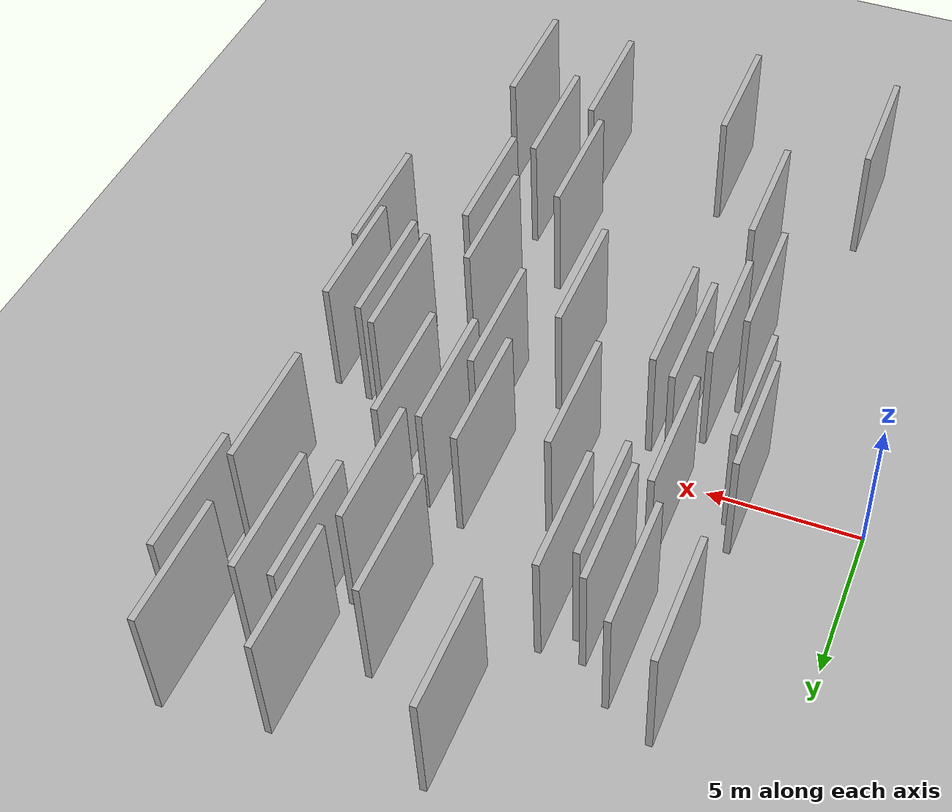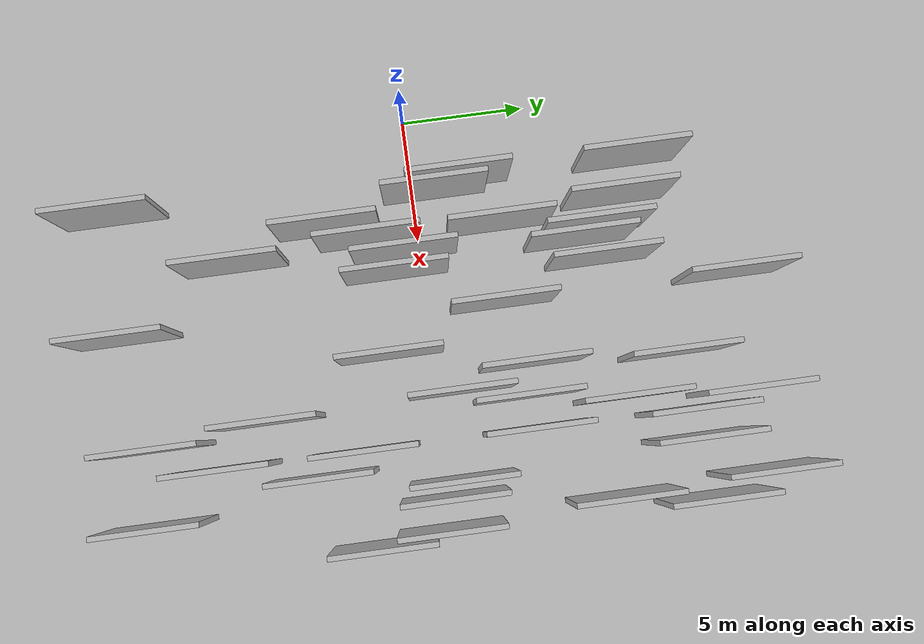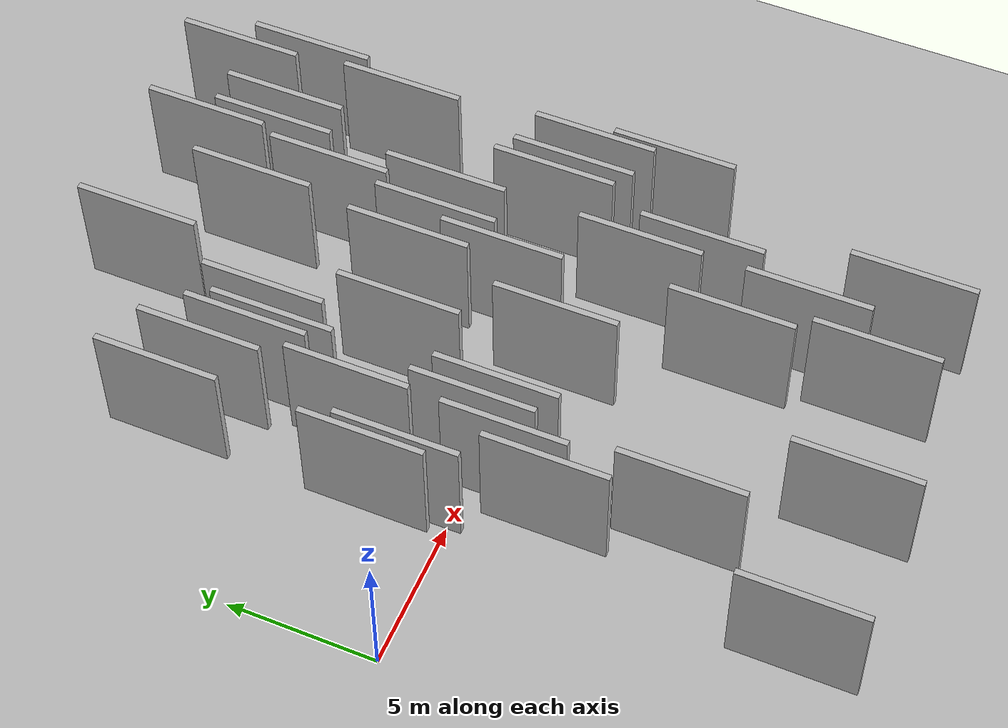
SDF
<?xml version="1.0" encoding="utf-8"?>

<sdf version="1.6">

   <world name="default">

      <gui fullscreen="0">

         <camera name="user_camera">

            <pose>-15 0 4.57585 0 0 0</pose>

            <view_controller>orbit</view_controller>

         </camera>

      </gui>

      <scene>

         <sky>

           <clouds>

             <speed>12</speed>

           </clouds>

         </sky>

         <ambient>0.4 0.4 0.4 1</ambient>

         <background>0.7 0.7 0.7 1</background>

         <shadows>1</shadows>

      </scene>

      <gravity>0 0 -9.8066</gravity>

      <magnetic_field>6e-06 2.3e-05 -4.2e-05</magnetic_field>

      <physics default="0" name="default_physics" type="ode">

         <ode>

            <solver>

               <type>quick</type>

               <iters>10</iters>

               <sor>1.0</sor>

               <use_dynamic_moi_rescaling>0</use_dynamic_moi_rescaling>

            </solver>

            <constraints>

               <cfm>0</cfm>

               <erp>0.2</erp>

               <contact_max_correcting_vel>100</contact_max_correcting_vel>

               <contact_surface_layer>0.001</contact_surface_layer>

            </constraints>

         </ode>

         <max_step_size>0.004</max_step_size>

         <real_time_factor>1</real_time_factor>

         <real_time_update_rate>250</real_time_update_rate>

      </physics>

      <light name="sun" type="directional">

         <cast_shadows>1</cast_shadows>

         <pose>0 0 10 0 0 0</pose>

         <diffuse>0.8 0.8 0.8 1</diffuse>

         <specular>0.2 0.2 0.2 1</specular>

         <attenuation>

            <range>1000</range>

            <constant>0.9</constant>

            <linear>0.01</linear>

            <quadratic>0.001</quadratic>

         </attenuation>

         <direction>-0.5 0.1 -0.9</direction>

      </light>

      <include>

         <name>ground_plane_1</name>

         <uri>model://HANNAS_ground_plane</uri>

         <pose>0 0 0  0 0 0</pose>

      </include>

      <include>

         <name>ground_plane_2</name>

         <uri>model://HANNAS_ground_plane</uri>

         <pose>100 0 0  0 0 0</pose>

      </include>

      <model name="HANNAS_wall_1">

         <static>1</static>

         <pose frame="">9.7592 -1.6104 2.5 0.000000 0.000000 1.570796</pose>

         <link name="link">

            <pose frame="">0 0 2.00 0 0 0</pose>

            <collision name="collision">

               <geometry>

                  <box>

                     <size>4.00 0.2 4.00</size>

                  </box>

               </geometry>

               <max_contacts>10</max_contacts>

               <surface>

                  <contact>

                     <ode/>

                  </contact>

                  <bounce/>

                  <friction>

                     <torsional>

                        <ode/>

                     </torsional>

                     <ode/>

                  </friction>

               </surface>

            </collision>

            <visual name="visual">

               <cast_shadows>0</cast_shadows>

               <geometry>

                  <box>

                     <size>4.00 0.2 4.00</size>

                  </box>

               </geometry>

               <material>

                  <script>

                     <uri>model://HANNAS_wall/materials/scripts</uri>

                     <uri>model://HANNAS_wall/materials/textures</uri>

                     <name>vrc/HANNAS_wall</name>

                  </script>

               </material>

            </visual>

            <self_collide>0</self_collide>

            <enable_wind>0</enable_wind>

            <kinematic>0</kinematic>

         </link>

      </model>

      <model name="HANNAS_wall_2">

         <static>1</static>

         <pose frame="">11.6773 -6.4739 2.5 0.000000 0.000000 1.570796</pose>

         <link name="link">

            <pose frame="">0 0 2.00 0 0 0</pose>

            <collision name="collision">

               <geometry>

                  <box>

                     <size>4.00 0.2 4.00</size>

                  </box>

               </geometry>

               <max_contacts>10</max_contacts>

               <surface>

                  <contact>

                     <ode/>

                  </contact>

                  <bounce/>

                  <friction>

                     <torsional>

                        <ode/>

                     </torsional>

                     <ode/>

                  </friction>

               </surface>

            </collision>

            <visual name="visual">

               <cast_shadows>0</cast_shadows>

               <geometry>

                  <box>

                     <size>4.00 0.2 4.00</size>

                  </box>

               </geometry>

               <material>

                  <script>

                     <uri>model://HANNAS_wall/materials/scripts</uri>

                     <uri>model://HANNAS_wall/materials/textures</uri>

                     <name>vrc/HANNAS_wall</name>

                  </script>

               </material>

            </visual>

            <self_collide>0</self_collide>

            <enable_wind>0</enable_wind>

            <kinematic>0</kinematic>

         </link>

      </model>

      <model name="HANNAS_wall_3">

         <static>1</static>

         <pose frame="">12.8077 11.5438 2.5 0.000000 0.000000 1.570796</pose>

         <link name="link">

            <pose frame="">0 0 2.00 0 0 0</pose>

            <collision name="collision">

               <geometry>

                  <box>

                     <size>4.00 0.2 4.00</size>

                  </box>

               </geometry>

               <max_contacts>10</max_contacts>

               <surface>

                  <contact>

                     <ode/>

                  </contact>

                  <bounce/>

                  <friction>

                     <torsional>

                        <ode/>

                     </torsional>

                     <ode/>

                  </friction>

               </surface>

            </collision>

            <visual name="visual">

               <cast_shadows>0</cast_shadows>

               <geometry>

                  <box>

                     <size>4.00 0.2 4.00</size>

                  </box>

               </geometry>

               <material>

                  <script>

                     <uri>model://HANNAS_wall/materials/scripts</uri>

                     <uri>model://HANNAS_wall/materials/textures</uri>

                     <name>vrc/HANNAS_wall</name>

                  </script>

               </material>

            </visual>

            <self_collide>0</self_collide>

            <enable_wind>0</enable_wind>

            <kinematic>0</kinematic>

         </link>

      </model>

      <model name="HANNAS_wall_4">

         <static>1</static>

         <pose frame="">5.2892 3.1388 2.5 0.000000 0.000000 1.570796</pose>

         <link name="link">

            <pose frame="">0 0 2.00 0 0 0</pose>

            <collision name="collision">

               <geometry>

                  <box>

                     <size>4.00 0.2 4.00</size>

                  </box>

               </geometry>

               <max_contacts>10</max_contacts>

               <surface>

                  <contact>

                     <ode/>

                  </contact>

                  <bounce/>

                  <friction>

                     <torsional>

                        <ode/>

                     </torsional>

                     <ode/>

                  </friction>

               </surface>

            </collision>

            <visual name="visual">

               <cast_shadows>0</cast_shadows>

               <geometry>

                  <box>

                     <size>4.00 0.2 4.00</size>

                  </box>

               </geometry>

               <material>

                  <script>

                     <uri>model://HANNAS_wall/materials/scripts</uri>

                     <uri>model://HANNAS_wall/materials/textures</uri>

                     <name>vrc/HANNAS_wall</name>

                  </script>

               </material>

            </visual>

            <self_collide>0</self_collide>

            <enable_wind>0</enable_wind>

            <kinematic>0</kinematic>

         </link>

      </model>

      <model name="HANNAS_wall_5">

         <static>1</static>

         <pose frame="">11.9851 3.2767 2.5 0.000000 0.000000 1.570796</pose>

         <link name="link">

            <pose frame="">0 0 2.00 0 0 0</pose>

            <collision name="collision">

               <geometry>

                  <box>

                     <size>4.00 0.2 4.00</size>

                  </box>

               </geometry>

               <max_contacts>10</max_contacts>

               <surface>

                  <contact>

                     <ode/>

                  </contact>

                  <bounce/>

                  <friction>

                     <torsional>

                        <ode/>

                     </torsional>

                     <ode/>

                  </friction>

               </surface>

            </collision>

            <visual name="visual">

               <cast_shadows>0</cast_shadows>

               <geometry>

                  <box>

                     <size>4.00 0.2 4.00</size>

                  </box>

               </geometry>

               <material>

                  <script>

                     <uri>model://HANNAS_wall/materials/scripts</uri>

                     <uri>model://HANNAS_wall/materials/textures</uri>

                     <name>vrc/HANNAS_wall</name>

                  </script>

               </material>

            </visual>

            <self_collide>0</self_collide>

            <enable_wind>0</enable_wind>

            <kinematic>0</kinematic>

         </link>

      </model>

      <model name="HANNAS_wall_6">

         <static>1</static>

         <pose frame="">16.8210 -2.7141 2.5 0.000000 0.000000 1.570796</pose>

         <link name="link">

            <pose frame="">0 0 2.00 0 0 0</pose>

            <collision name="collision">

               <geometry>

                  <box>

                     <size>4.00 0.2 4.00</size>

                  </box>

               </geometry>

               <max_contacts>10</max_contacts>

               <surface>

                  <contact>

                     <ode/>

                  </contact>

                  <bounce/>

                  <friction>

                     <torsional>

                        <ode/>

                     </torsional>

                     <ode/>

                  </friction>

               </surface>

            </collision>

            <visual name="visual">

               <cast_shadows>0</cast_shadows>

               <geometry>

                  <box>

                     <size>4.00 0.2 4.00</size>

                  </box>

               </geometry>

               <material>

                  <script>

                     <uri>model://HANNAS_wall/materials/scripts</uri>

                     <uri>model://HANNAS_wall/materials/textures</uri>

                     <name>vrc/HANNAS_wall</name>

                  </script>

               </material>

            </visual>

            <self_collide>0</self_collide>

            <enable_wind>0</enable_wind>

            <kinematic>0</kinematic>

         </link>

      </model>

      <model name="HANNAS_wall_7">

         <static>1</static>

         <pose frame="">6.6641 -1.0126 2.5 0.000000 0.000000 1.570796</pose>

         <link name="link">

            <pose frame="">0 0 2.00 0 0 0</pose>

            <collision name="collision">

               <geometry>

                  <box>

                     <size>4.00 0.2 4.00</size>

                  </box>

               </geometry>

               <max_contacts>10</max_contacts>

               <surface>

                  <contact>

                     <ode/>

                  </contact>

                  <bounce/>

                  <friction>

                     <torsional>

                        <ode/>

                     </torsional>

                     <ode/>

                  </friction>

               </surface>

            </collision>

            <visual name="visual">

               <cast_shadows>0</cast_shadows>

               <geometry>

                  <box>

                     <size>4.00 0.2 4.00</size>

                  </box>

               </geometry>

               <material>

                  <script>

                     <uri>model://HANNAS_wall/materials/scripts</uri>

                     <uri>model://HANNAS_wall/materials/textures</uri>

                     <name>vrc/HANNAS_wall</name>

                  </script>

               </material>

            </visual>

            <self_collide>0</self_collide>

            <enable_wind>0</enable_wind>

            <kinematic>0</kinematic>

         </link>

      </model>

      <model name="HANNAS_wall_8">

         <static>1</static>

         <pose frame="">4.6012 -3.4055 2.5 0.000000 0.000000 1.570796</pose>

         <link name="link">

            <pose frame="">0 0 2.00 0 0 0</pose>

            <collision name="collision">

               <geometry>

                  <box>

                     <size>4.00 0.2 4.00</size>

                  </box>

               </geometry>

               <max_contacts>10</max_contacts>

               <surface>

                  <contact>

                     <ode/>

                  </contact>

                  <bounce/>

                  <friction>

                     <torsional>

                        <ode/>

                     </torsional>

                     <ode/>

                  </friction>

               </surface>

            </collision>

            <visual name="visual">

               <cast_shadows>0</cast_shadows>

               <geometry>

                  <box>

                     <size>4.00 0.2 4.00</size>

                  </box>

               </geometry>

               <material>

                  <script>

                     <uri>model://HANNAS_wall/materials/scripts</uri>

                     <uri>model://HANNAS_wall/materials/textures</uri>

                     <name>vrc/HANNAS_wall</name>

                  </script>

               </material>

            </visual>

            <self_collide>0</self_collide>

            <enable_wind>0</enable_wind>

            <kinematic>0</kinematic>

         </link>

      </model>

      <model name="HANNAS_wall_9">

         <static>1</static>

         <pose frame="">13.9949 -4.6772 2.5 0.000000 0.000000 1.570796</pose>

         <link name="link">

            <pose frame="">0 0 2.00 0 0 0</pose>

            <collision name="collision">

               <geometry>

                  <box>

                     <size>4.00 0.2 4.00</size>

                  </box>

               </geometry>

               <max_contacts>10</max_contacts>

               <surface>

                  <contact>

                     <ode/>

                  </contact>

                  <bounce/>

                  <friction>

                     <torsional>

                        <ode/>

                     </torsional>

                     <ode/>

                  </friction>

               </surface>

            </collision>

            <visual name="visual">

               <cast_shadows>0</cast_shadows>

               <geometry>

                  <box>

                     <size>4.00 0.2 4.00</size>

                  </box>

               </geometry>

               <material>

                  <script>

                     <uri>model://HANNAS_wall/materials/scripts</uri>

                     <uri>model://HANNAS_wall/materials/textures</uri>

                     <name>vrc/HANNAS_wall</name>

                  </script>

               </material>

            </visual>

            <self_collide>0</self_collide>

            <enable_wind>0</enable_wind>

            <kinematic>0</kinematic>

         </link>

      </model>

      <model name="HANNAS_wall_10">

         <static>1</static>

         <pose frame="">13.2294 3.4819 2.5 0.000000 0.000000 1.570796</pose>

         <link name="link">

            <pose frame="">0 0 2.00 0 0 0</pose>

            <collision name="collision">

               <geometry>

                  <box>

                     <size>4.00 0.2 4.00</size>

                  </box>

               </geometry>

               <max_contacts>10</max_contacts>

               <surface>

                  <contact>

                     <ode/>

                  </contact>

                  <bounce/>

                  <friction>

                     <torsional>

                        <ode/>

                     </torsional>

                     <ode/>

                  </friction>

               </surface>

            </collision>

            <visual name="visual">

               <cast_shadows>0</cast_shadows>

               <geometry>

                  <box>

                     <size>4.00 0.2 4.00</size>

                  </box>

               </geometry>

               <material>

                  <script>

                     <uri>model://HANNAS_wall/materials/scripts</uri>

                     <uri>model://HANNAS_wall/materials/textures</uri>

                     <name>vrc/HANNAS_wall</name>

                  </script>

               </material>

            </visual>

            <self_collide>0</self_collide>

            <enable_wind>0</enable_wind>

            <kinematic>0</kinematic>

         </link>

      </model>

      <model name="HANNAS_wall_11">

         <static>1</static>

         <pose frame="">14.7511 0.4946 2.5 0.000000 0.000000 1.570796</pose>

         <link name="link">

            <pose frame="">0 0 2.00 0 0 0</pose>

            <collision name="collision">

               <geometry>

                  <box>

                     <size>4.00 0.2 4.00</size>

                  </box>

               </geometry>

               <max_contacts>10</max_contacts>

               <surface>

                  <contact>

                     <ode/>

                  </contact>

                  <bounce/>

                  <friction>

                     <torsional>

                        <ode/>

                     </torsional>

                     <ode/>

                  </friction>

               </surface>

            </collision>

            <visual name="visual">

               <cast_shadows>0</cast_shadows>

               <geometry>

                  <box>

                     <size>4.00 0.2 4.00</size>

                  </box>

               </geometry>

               <material>

                  <script>

                     <uri>model://HANNAS_wall/materials/scripts</uri>

                     <uri>model://HANNAS_wall/materials/textures</uri>

                     <name>vrc/HANNAS_wall</name>

                  </script>

               </material>

            </visual>

            <self_collide>0</self_collide>

            <enable_wind>0</enable_wind>

            <kinematic>0</kinematic>

         </link>

      </model>

      <model name="HANNAS_wall_12">

         <static>1</static>

         <pose frame="">8.3397 2.8619 2.5 0.000000 0.000000 1.570796</pose>

         <link name="link">

            <pose frame="">0 0 2.00 0 0 0</pose>

            <collision name="collision">

               <geometry>

                  <box>

                     <size>4.00 0.2 4.00</size>

                  </box>

               </geometry>

               <max_contacts>10</max_contacts>

               <surface>

                  <contact>

                     <ode/>

                  </contact>

                  <bounce/>

                  <friction>

                     <torsional>

                        <ode/>

                     </torsional>

                     <ode/>

                  </friction>

               </surface>

            </collision>

            <visual name="visual">

               <cast_shadows>0</cast_shadows>

               <geometry>

                  <box>

                     <size>4.00 0.2 4.00</size>

                  </box>

               </geometry>

               <material>

                  <script>

                     <uri>model://HANNAS_wall/materials/scripts</uri>

                     <uri>model://HANNAS_wall/materials/textures</uri>

                     <name>vrc/HANNAS_wall</name>

                  </script>

               </material>

            </visual>

            <self_collide>0</self_collide>

            <enable_wind>0</enable_wind>

            <kinematic>0</kinematic>

         </link>

      </model>

      <model name="HANNAS_wall_13">

         <static>1</static>

         <pose frame="">11.4666 0.8533 2.5 0.000000 0.000000 1.570796</pose>

         <link name="link">

            <pose frame="">0 0 2.00 0 0 0</pose>

            <collision name="collision">

               <geometry>

                  <box>

                     <size>4.00 0.2 4.00</size>

                  </box>

               </geometry>

               <max_contacts>10</max_contacts>

               <surface>

                  <contact>

                     <ode/>

                  </contact>

                  <bounce/>

                  <friction>

                     <torsional>

                        <ode/>

                     </torsional>

                     <ode/>

                  </friction>

               </surface>

            </collision>

            <visual name="visual">

               <cast_shadows>0</cast_shadows>

               <geometry>

                  <box>

                     <size>4.00 0.2 4.00</size>

                  </box>

               </geometry>

               <material>

                  <script>

                     <uri>model://HANNAS_wall/materials/scripts</uri>

                     <uri>model://HANNAS_wall/materials/textures</uri>

                     <name>vrc/HANNAS_wall</name>

                  </script>

               </material>

            </visual>

            <self_collide>0</self_collide>

            <enable_wind>0</enable_wind>

            <kinematic>0</kinematic>

         </link>

      </model>

      <model name="HANNAS_wall_14">

         <static>1</static>

         <pose frame="">13.2216 -2.9685 2.5 0.000000 0.000000 1.570796</pose>

         <link name="link">

            <pose frame="">0 0 2.00 0 0 0</pose>

            <collision name="collision">

               <geometry>

                  <box>

                     <size>4.00 0.2 4.00</size>

                  </box>

               </geometry>

               <max_contacts>10</max_contacts>

               <surface>

                  <contact>

                     <ode/>

                  </contact>

                  <bounce/>

                  <friction>

                     <torsional>

                        <ode/>

                     </torsional>

                     <ode/>

                  </friction>

               </surface>

            </collision>

            <visual name="visual">

               <cast_shadows>0</cast_shadows>

               <geometry>

                  <box>

                     <size>4.00 0.2 4.00</size>

                  </box>

               </geometry>

               <material>

                  <script>

                     <uri>model://HANNAS_wall/materials/scripts</uri>

                     <uri>model://HANNAS_wall/materials/textures</uri>

                     <name>vrc/HANNAS_wall</name>

                  </script>

               </material>

            </visual>

            <self_collide>0</self_collide>

            <enable_wind>0</enable_wind>

            <kinematic>0</kinematic>

         </link>

      </model>

      <model name="HANNAS_wall_15">

         <static>1</static>

         <pose frame="">14.3509 9.5449 2.5 0.000000 0.000000 1.570796</pose>

         <link name="link">

            <pose frame="">0 0 2.00 0 0 0</pose>

            <collision name="collision">

               <geometry>

                  <box>

                     <size>4.00 0.2 4.00</size>

                  </box>

               </geometry>

               <max_contacts>10</max_contacts>

               <surface>

                  <contact>

                     <ode/>

                  </contact>

                  <bounce/>

                  <friction>

                     <torsional>

                        <ode/>

                     </torsional>

                     <ode/>

                  </friction>

               </surface>

            </collision>

            <visual name="visual">

               <cast_shadows>0</cast_shadows>

               <geometry>

                  <box>

                     <size>4.00 0.2 4.00</size>

                  </box>

               </geometry>

               <material>

                  <script>

                     <uri>model://HANNAS_wall/materials/scripts</uri>

                     <uri>model://HANNAS_wall/materials/textures</uri>

                     <name>vrc/HANNAS_wall</name>

                  </script>

               </material>

            </visual>

            <self_collide>0</self_collide>

            <enable_wind>0</enable_wind>

            <kinematic>0</kinematic>

         </link>

      </model>

      <model name="HANNAS_wall_16">

         <static>1</static>

         <pose frame="">7.8540 -11.6183 2.5 0.000000 0.000000 1.570796</pose>

         <link name="link">

            <pose frame="">0 0 2.00 0 0 0</pose>

            <collision name="collision">

               <geometry>

                  <box>

                     <size>4.00 0.2 4.00</size>

                  </box>

               </geometry>

               <max_contacts>10</max_contacts>

               <surface>

                  <contact>

                     <ode/>

                  </contact>

                  <bounce/>

                  <friction>

                     <torsional>

                        <ode/>

                     </torsional>

                     <ode/>

                  </friction>

               </surface>

            </collision>

            <visual name="visual">

               <cast_shadows>0</cast_shadows>

               <geometry>

                  <box>

                     <size>4.00 0.2 4.00</size>

                  </box>

               </geometry>

               <material>

                  <script>

                     <uri>model://HANNAS_wall/materials/scripts</uri>

                     <uri>model://HANNAS_wall/materials/textures</uri>

                     <name>vrc/HANNAS_wall</name>

                  </script>

               </material>

            </visual>

            <self_collide>0</self_collide>

            <enable_wind>0</enable_wind>

            <kinematic>0</kinematic>

         </link>

      </model>

      <model name="HANNAS_wall_17">

         <static>1</static>

         <pose frame="">3.4030 8.3914 2.5 0.000000 0.000000 1.570796</pose>

         <link name="link">

            <pose frame="">0 0 2.00 0 0 0</pose>

            <collision name="collision">

               <geometry>

                  <box>

                     <size>4.00 0.2 4.00</size>

                  </box>

               </geometry>

               <max_contacts>10</max_contacts>

               <surface>

                  <contact>

                     <ode/>

                  </contact>

                  <bounce/>

                  <friction>

                     <torsional>

                        <ode/>

                     </torsional>

                     <ode/>

                  </friction>

               </surface>

            </collision>

            <visual name="visual">

               <cast_shadows>0</cast_shadows>

               <geometry>

                  <box>

                     <size>4.00 0.2 4.00</size>

                  </box>

               </geometry>

               <material>

                  <script>

                     <uri>model://HANNAS_wall/materials/scripts</uri>

                     <uri>model://HANNAS_wall/materials/textures</uri>

                     <name>vrc/HANNAS_wall</name>

                  </script>

               </material>

            </visual>

            <self_collide>0</self_collide>

            <enable_wind>0</enable_wind>

            <kinematic>0</kinematic>

         </link>

      </model>

      <model name="HANNAS_wall_18">

         <static>1</static>

         <pose frame="">16.1538 6.3049 2.5 0.000000 0.000000 1.570796</pose>

         <link name="link">

            <pose frame="">0 0 2.00 0 0 0</pose>

            <collision name="collision">

               <geometry>

                  <box>

                     <size>4.00 0.2 4.00</size>

                  </box>

               </geometry>

               <max_contacts>10</max_contacts>

               <surface>

                  <contact>

                     <ode/>

                  </contact>

                  <bounce/>

                  <friction>

                     <torsional>

                        <ode/>

                     </torsional>

                     <ode/>

                  </friction>

               </surface>

            </collision>

            <visual name="visual">

               <cast_shadows>0</cast_shadows>

               <geometry>

                  <box>

                     <size>4.00 0.2 4.00</size>

                  </box>

               </geometry>

               <material>

                  <script>

                     <uri>model://HANNAS_wall/materials/scripts</uri>

                     <uri>model://HANNAS_wall/materials/textures</uri>

                     <name>vrc/HANNAS_wall</name>

                  </script>

               </material>

            </visual>

            <self_collide>0</self_collide>

            <enable_wind>0</enable_wind>

            <kinematic>0</kinematic>

         </link>

      </model>

      <model name="HANNAS_wall_19">

         <static>1</static>

         <pose frame="">16.5212 -0.1748 2.5 0.000000 0.000000 1.570796</pose>

         <link name="link">

            <pose frame="">0 0 2.00 0 0 0</pose>

            <collision name="collision">

               <geometry>

                  <box>

                     <size>4.00 0.2 4.00</size>

                  </box>

               </geometry>

               <max_contacts>10</max_contacts>

               <surface>

                  <contact>

                     <ode/>

                  </contact>

                  <bounce/>

                  <friction>

                     <torsional>

                        <ode/>

                     </torsional>

                     <ode/>

                  </friction>

               </surface>

            </collision>

            <visual name="visual">

               <cast_shadows>0</cast_shadows>

               <geometry>

                  <box>

                     <size>4.00 0.2 4.00</size>

                  </box>

               </geometry>

               <material>

                  <script>

                     <uri>model://HANNAS_wall/materials/scripts</uri>

                     <uri>model://HANNAS_wall/materials/textures</uri>

                     <name>vrc/HANNAS_wall</name>

                  </script>

               </material>

            </visual>

            <self_collide>0</self_collide>

            <enable_wind>0</enable_wind>

            <kinematic>0</kinematic>

         </link>

      </model>

      <model name="HANNAS_wall_20">

         <static>1</static>

         <pose frame="">10.7692 3.6537 2.5 0.000000 0.000000 1.570796</pose>

         <link name="link">

            <pose frame="">0 0 2.00 0 0 0</pose>

            <collision name="collision">

               <geometry>

                  <box>

                     <size>4.00 0.2 4.00</size>

                  </box>

               </geometry>

               <max_contacts>10</max_contacts>

               <surface>

                  <contact>

                     <ode/>

                  </contact>

                  <bounce/>

                  <friction>

                     <torsional>

                        <ode/>

                     </torsional>

                     <ode/>

                  </friction>

               </surface>

            </collision>

            <visual name="visual">

               <cast_shadows>0</cast_shadows>

               <geometry>

                  <box>

                     <size>4.00 0.2 4.00</size>

                  </box>

               </geometry>

               <material>

                  <script>

                     <uri>model://HANNAS_wall/materials/scripts</uri>

                     <uri>model://HANNAS_wall/materials/textures</uri>

                     <name>vrc/HANNAS_wall</name>

                  </script>

               </material>

            </visual>

            <self_collide>0</self_collide>

            <enable_wind>0</enable_wind>

            <kinematic>0</kinematic>

         </link>

      </model>

      <model name="HANNAS_wall_21">

         <static>1</static>

         <pose frame="">16.6238 9.6895 2.5 0.000000 0.000000 1.570796</pose>

         <link name="link">

            <pose frame="">0 0 2.00 0 0 0</pose>

            <collision name="collision">

               <geometry>

                  <box>

                     <size>4.00 0.2 4.00</size>

                  </box>

               </geometry>

               <max_contacts>10</max_contacts>

               <surface>

                  <contact>

                     <ode/>

                  </contact>

                  <bounce/>

                  <friction>

                     <torsional>

                        <ode/>

                     </torsional>

                     <ode/>

                  </friction>

               </surface>

            </collision>

            <visual name="visual">

               <cast_shadows>0</cast_shadows>

               <geometry>

                  <box>

                     <size>4.00 0.2 4.00</size>

                  </box>

               </geometry>

               <material>

                  <script>

                     <uri>model://HANNAS_wall/materials/scripts</uri>

                     <uri>model://HANNAS_wall/materials/textures</uri>

                     <name>vrc/HANNAS_wall</name>

                  </script>

               </material>

            </visual>

            <self_collide>0</self_collide>

            <enable_wind>0</enable_wind>

            <kinematic>0</kinematic>

         </link>

      </model>

      <model name="HANNAS_wall_22">

         <static>1</static>

         <pose frame="">3.3506 1.7838 2.5 0.000000 0.000000 1.570796</pose>

         <link name="link">

            <pose frame="">0 0 2.00 0 0 0</pose>

            <collision name="collision">

               <geometry>

                  <box>

                     <size>4.00 0.2 4.00</size>

                  </box>

               </geometry>

               <max_contacts>10</max_contacts>

               <surface>

                  <contact>

                     <ode/>

                  </contact>

                  <bounce/>

                  <friction>

                     <torsional>

                        <ode/>

                     </torsional>

                     <ode/>

                  </friction>

               </surface>

            </collision>

            <visual name="visual">

               <cast_shadows>0</cast_shadows>

               <geometry>

                  <box>

                     <size>4.00 0.2 4.00</size>

                  </box>

               </geometry>

               <material>

                  <script>

                     <uri>model://HANNAS_wall/materials/scripts</uri>

                     <uri>model://HANNAS_wall/materials/textures</uri>

                     <name>vrc/HANNAS_wall</name>

                  </script>

               </material>

            </visual>

            <self_collide>0</self_collide>

            <enable_wind>0</enable_wind>

            <kinematic>0</kinematic>

         </link>

      </model>

      <model name="HANNAS_wall_23">

         <static>1</static>

         <pose frame="">13.2113 -8.3599 2.5 0.000000 0.000000 1.570796</pose>

         <link name="link">

            <pose frame="">0 0 2.00 0 0 0</pose>

            <collision name="collision">

               <geometry>

                  <box>

                     <size>4.00 0.2 4.00</size>

                  </box>

               </geometry>

               <max_contacts>10</max_contacts>

               <surface>

                  <contact>

                     <ode/>

                  </contact>

                  <bounce/>

                  <friction>

                     <torsional>

                        <ode/>

                     </torsional>

                     <ode/>

                  </friction>

               </surface>

            </collision>

            <visual name="visual">

               <cast_shadows>0</cast_shadows>

               <geometry>

                  <box>

                     <size>4.00 0.2 4.00</size>

                  </box>

               </geometry>

               <material>

                  <script>

                     <uri>model://HANNAS_wall/materials/scripts</uri>

                     <uri>model://HANNAS_wall/materials/textures</uri>

                     <name>vrc/HANNAS_wall</name>

                  </script>

               </material>

            </visual>

            <self_collide>0</self_collide>

            <enable_wind>0</enable_wind>

            <kinematic>0</kinematic>

         </link>

      </model>

      <model name="HANNAS_wall_24">

         <static>1</static>

         <pose frame="">3.6928 0.8385 2.5 0.000000 0.000000 1.570796</pose>

         <link name="link">

            <pose frame="">0 0 2.00 0 0 0</pose>

            <collision name="collision">

               <geometry>

                  <box>

                     <size>4.00 0.2 4.00</size>

                  </box>

               </geometry>

               <max_contacts>10</max_contacts>

               <surface>

                  <contact>

                     <ode/>

                  </contact>

                  <bounce/>

                  <friction>

                     <torsional>

                        <ode/>

                     </torsional>

                     <ode/>

                  </friction>

               </surface>

            </collision>

            <visual name="visual">

               <cast_shadows>0</cast_shadows>

               <geometry>

                  <box>

                     <size>4.00 0.2 4.00</size>

                  </box>

               </geometry>

               <material>

                  <script>

                     <uri>model://HANNAS_wall/materials/scripts</uri>

                     <uri>model://HANNAS_wall/materials/textures</uri>

                     <name>vrc/HANNAS_wall</name>

                  </script>

               </material>

            </visual>

            <self_collide>0</self_collide>

            <enable_wind>0</enable_wind>

            <kinematic>0</kinematic>

         </link>

      </model>

      <model name="HANNAS_wall_25">

         <static>1</static>

         <pose frame="">5.9447 -0.5762 2.5 0.000000 0.000000 1.570796</pose>

         <link name="link">

            <pose frame="">0 0 2.00 0 0 0</pose>

            <collision name="collision">

               <geometry>

                  <box>

                     <size>4.00 0.2 4.00</size>

                  </box>

               </geometry>

               <max_contacts>10</max_contacts>

               <surface>

                  <contact>

                     <ode/>

                  </contact>

                  <bounce/>

                  <friction>

                     <torsional>

                        <ode/>

                     </torsional>

                     <ode/>

                  </friction>

               </surface>

            </collision>

            <visual name="visual">

               <cast_shadows>0</cast_shadows>

               <geometry>

                  <box>

                     <size>4.00 0.2 4.00</size>

                  </box>

               </geometry>

               <material>

                  <script>

                     <uri>model://HANNAS_wall/materials/scripts</uri>

                     <uri>model://HANNAS_wall/materials/textures</uri>

                     <name>vrc/HANNAS_wall</name>

                  </script>

               </material>

            </visual>

            <self_collide>0</self_collide>

            <enable_wind>0</enable_wind>

            <kinematic>0</kinematic>

         </link>

      </model>

      <model name="HANNAS_wall_26">

         <static>1</static>

         <pose frame="">12.1567 -10.8247 2.5 0.000000 0.000000 1.570796</pose>

         <link name="link">

            <pose frame="">0 0 2.00 0 0 0</pose>

            <collision name="collision">

               <geometry>

                  <box>

                     <size>4.00 0.2 4.00</size>

                  </box>

               </geometry>

               <max_contacts>10</max_contacts>

               <surface>

                  <contact>

                     <ode/>

                  </contact>

                  <bounce/>

                  <friction>

                     <torsional>

                        <ode/>

                     </torsional>

                     <ode/>

                  </friction>

               </surface>

            </collision>

            <visual name="visual">

               <cast_shadows>0</cast_shadows>

               <geometry>

                  <box>

                     <size>4.00 0.2 4.00</size>

                  </box>

               </geometry>

               <material>

                  <script>

                     <uri>model://HANNAS_wall/materials/scripts</uri>

                     <uri>model://HANNAS_wall/materials/textures</uri>

                     <name>vrc/HANNAS_wall</name>

                  </script>

               </material>

            </visual>

            <self_collide>0</self_collide>

            <enable_wind>0</enable_wind>

            <kinematic>0</kinematic>

         </link>

      </model>

      <model name="HANNAS_wall_27">

         <static>1</static>

         <pose frame="">15.0164 -11.0518 2.5 0.000000 0.000000 1.570796</pose>

         <link name="link">

            <pose frame="">0 0 2.00 0 0 0</pose>

            <collision name="collision">

               <geometry>

                  <box>

                     <size>4.00 0.2 4.00</size>

                  </box>

               </geometry>

               <max_contacts>10</max_contacts>

               <surface>

                  <contact>

                     <ode/>

                  </contact>

                  <bounce/>

                  <friction>

                     <torsional>

                        <ode/>

                     </torsional>

                     <ode/>

                  </friction>

               </surface>

            </collision>

            <visual name="visual">

               <cast_shadows>0</cast_shadows>

               <geometry>

                  <box>

                     <size>4.00 0.2 4.00</size>

                  </box>

               </geometry>

               <material>

                  <script>

                     <uri>model://HANNAS_wall/materials/scripts</uri>

                     <uri>model://HANNAS_wall/materials/textures</uri>

                     <name>vrc/HANNAS_wall</name>

                  </script>

               </material>

            </visual>

            <self_collide>0</self_collide>

            <enable_wind>0</enable_wind>

            <kinematic>0</kinematic>

         </link>

      </model>

      <model name="HANNAS_wall_28">

         <static>1</static>

         <pose frame="">11.0796 9.0973 2.5 0.000000 0.000000 1.570796</pose>

         <link name="link">

            <pose frame="">0 0 2.00 0 0 0</pose>

            <collision name="collision">

               <geometry>

                  <box>

                     <size>4.00 0.2 4.00</size>

                  </box>

               </geometry>

               <max_contacts>10</max_contacts>

               <surface>

                  <contact>

                     <ode/>

                  </contact>

                  <bounce/>

                  <friction>

                     <torsional>

                        <ode/>

                     </torsional>

                     <ode/>

                  </friction>

               </surface>

            </collision>

            <visual name="visual">

               <cast_shadows>0</cast_shadows>

               <geometry>

                  <box>

                     <size>4.00 0.2 4.00</size>

                  </box>

               </geometry>

               <material>

                  <script>

                     <uri>model://HANNAS_wall/materials/scripts</uri>

                     <uri>model://HANNAS_wall/materials/textures</uri>

                     <name>vrc/HANNAS_wall</name>

                  </script>

               </material>

            </visual>

            <self_collide>0</self_collide>

            <enable_wind>0</enable_wind>

            <kinematic>0</kinematic>

         </link>

      </model>

      <model name="HANNAS_wall_29">

         <static>1</static>

         <pose frame="">5.5809 -7.1650 2.5 0.000000 0.000000 1.570796</pose>

         <link name="link">

            <pose frame="">0 0 2.00 0 0 0</pose>

            <collision name="collision">

               <geometry>

                  <box>

                     <size>4.00 0.2 4.00</size>

                  </box>

               </geometry>

               <max_contacts>10</max_contacts>

               <surface>

                  <contact>

                     <ode/>

                  </contact>

                  <bounce/>

                  <friction>

                     <torsional>

                        <ode/>

                     </torsional>

                     <ode/>

                  </friction>

               </surface>

            </collision>

            <visual name="visual">

               <cast_shadows>0</cast_shadows>

               <geometry>

                  <box>

                     <size>4.00 0.2 4.00</size>

                  </box>

               </geometry>

               <material>

                  <script>

                     <uri>model://HANNAS_wall/materials/scripts</uri>

                     <uri>model://HANNAS_wall/materials/textures</uri>

                     <name>vrc/HANNAS_wall</name>

                  </script>

               </material>

            </visual>

            <self_collide>0</self_collide>

            <enable_wind>0</enable_wind>

            <kinematic>0</kinematic>

         </link>

      </model>

      <model name="HANNAS_wall_30">

         <static>1</static>

         <pose frame="">4.8474 7.7330 2.5 0.000000 0.000000 1.570796</pose>

         <link name="link">

            <pose frame="">0 0 2.00 0 0 0</pose>

            <collision name="collision">

               <geometry>

                  <box>

                     <size>4.00 0.2 4.00</size>

                  </box>

               </geometry>

               <max_contacts>10</max_contacts>

               <surface>

                  <contact>

                     <ode/>

                  </contact>

                  <bounce/>

                  <friction>

                     <torsional>

                        <ode/>

                     </torsional>

                     <ode/>

                  </friction>

               </surface>

            </collision>

            <visual name="visual">

               <cast_shadows>0</cast_shadows>

               <geometry>

                  <box>

                     <size>4.00 0.2 4.00</size>

                  </box>

               </geometry>

               <material>

                  <script>

                     <uri>model://HANNAS_wall/materials/scripts</uri>

                     <uri>model://HANNAS_wall/materials/textures</uri>

                     <name>vrc/HANNAS_wall</name>

                  </script>

               </material>

            </visual>

            <self_collide>0</self_collide>

            <enable_wind>0</enable_wind>

            <kinematic>0</kinematic>

         </link>

      </model>

      <model name="HANNAS_wall_31">

         <static>1</static>

         <pose frame="">13.2948 9.4437 2.5 0.000000 0.000000 1.570796</pose>

         <link name="link">

            <pose frame="">0 0 2.00 0 0 0</pose>

            <collision name="collision">

               <geometry>

                  <box>

                     <size>4.00 0.2 4.00</size>

                  </box>

               </geometry>

               <max_contacts>10</max_contacts>

               <surface>

                  <contact>

                     <ode/>

                  </contact>

                  <bounce/>

                  <friction>

                     <torsional>

                        <ode/>

                     </torsional>

                     <ode/>

                  </friction>

               </surface>

            </collision>

            <visual name="visual">

               <cast_shadows>0</cast_shadows>

               <geometry>

                  <box>

                     <size>4.00 0.2 4.00</size>

                  </box>

               </geometry>

               <material>

                  <script>

                     <uri>model://HANNAS_wall/materials/scripts</uri>

                     <uri>model://HANNAS_wall/materials/textures</uri>

                     <name>vrc/HANNAS_wall</name>

                  </script>

               </material>

            </visual>

            <self_collide>0</self_collide>

            <enable_wind>0</enable_wind>

            <kinematic>0</kinematic>

         </link>

      </model>

      <model name="HANNAS_wall_32">

         <static>1</static>

         <pose frame="">5.2356 -1.8650 2.5 0.000000 0.000000 1.570796</pose>

         <link name="link">

            <pose frame="">0 0 2.00 0 0 0</pose>

            <collision name="collision">

               <geometry>

                  <box>

                     <size>4.00 0.2 4.00</size>

                  </box>

               </geometry>

               <max_contacts>10</max_contacts>

               <surface>

                  <contact>

                     <ode/>

                  </contact>

                  <bounce/>

                  <friction>

                     <torsional>

                        <ode/>

                     </torsional>

                     <ode/>

                  </friction>

               </surface>

            </collision>

            <visual name="visual">

               <cast_shadows>0</cast_shadows>

               <geometry>

                  <box>

                     <size>4.00 0.2 4.00</size>

                  </box>

               </geometry>

               <material>

                  <script>

                     <uri>model://HANNAS_wall/materials/scripts</uri>

                     <uri>model://HANNAS_wall/materials/textures</uri>

                     <name>vrc/HANNAS_wall</name>

                  </script>

               </material>

            </visual>

            <self_collide>0</self_collide>

            <enable_wind>0</enable_wind>

            <kinematic>0</kinematic>

         </link>

      </model>

      <model name="HANNAS_wall_33">

         <static>1</static>

         <pose frame="">7.1404 6.7686 2.5 0.000000 0.000000 1.570796</pose>

         <link name="link">

            <pose frame="">0 0 2.00 0 0 0</pose>

            <collision name="collision">

               <geometry>

                  <box>

                     <size>4.00 0.2 4.00</size>

                  </box>

               </geometry>

               <max_contacts>10</max_contacts>

               <surface>

                  <contact>

                     <ode/>

                  </contact>

                  <bounce/>

                  <friction>

                     <torsional>

                        <ode/>

                     </torsional>

                     <ode/>

                  </friction>

               </surface>

            </collision>

            <visual name="visual">

               <cast_shadows>0</cast_shadows>

               <geometry>

                  <box>

                     <size>4.00 0.2 4.00</size>

                  </box>

               </geometry>

               <material>

                  <script>

                     <uri>model://HANNAS_wall/materials/scripts</uri>

                     <uri>model://HANNAS_wall/materials/textures</uri>

                     <name>vrc/HANNAS_wall</name>

                  </script>

               </material>

            </visual>

            <self_collide>0</self_collide>

            <enable_wind>0</enable_wind>

            <kinematic>0</kinematic>

         </link>

      </model>

      <model name="HANNAS_wall_34">

         <static>1</static>

         <pose frame="">8.3448 11.6345 2.5 0.000000 0.000000 1.570796</pose>

         <link name="link">

            <pose frame="">0 0 2.00 0 0 0</pose>

            <collision name="collision">

               <geometry>

                  <box>

                     <size>4.00 0.2 4.00</size>

                  </box>

               </geometry>

               <max_contacts>10</max_contacts>

               <surface>

                  <contact>

                     <ode/>

                  </contact>

                  <bounce/>

                  <friction>

                     <torsional>

                        <ode/>

                     </torsional>

                     <ode/>

                  </friction>

               </surface>

            </collision>

            <visual name="visual">

               <cast_shadows>0</cast_shadows>

               <geometry>

                  <box>

                     <size>4.00 0.2 4.00</size>

                  </box>

               </geometry>

               <material>

                  <script>

                     <uri>model://HANNAS_wall/materials/scripts</uri>

                     <uri>model://HANNAS_wall/materials/textures</uri>

                     <name>vrc/HANNAS_wall</name>

                  </script>

               </material>

            </visual>

            <self_collide>0</self_collide>

            <enable_wind>0</enable_wind>

            <kinematic>0</kinematic>

         </link>

      </model>

      <model name="HANNAS_wall_35">

         <static>1</static>

         <pose frame="">5.8718 6.7140 2.5 0.000000 0.000000 1.570796</pose>

         <link name="link">

            <pose frame="">0 0 2.00 0 0 0</pose>

            <collision name="collision">

               <geometry>

                  <box>

                     <size>4.00 0.2 4.00</size>

                  </box>

               </geometry>

               <max_contacts>10</max_contacts>

               <surface>

                  <contact>

                     <ode/>

                  </contact>

                  <bounce/>

                  <friction>

                     <torsional>

                        <ode/>

                     </torsional>

                     <ode/>

                  </friction>

               </surface>

            </collision>

            <visual name="visual">

               <cast_shadows>0</cast_shadows>

               <geometry>

                  <box>

                     <size>4.00 0.2 4.00</size>

                  </box>

               </geometry>

               <material>

                  <script>

                     <uri>model://HANNAS_wall/materials/scripts</uri>

                     <uri>model://HANNAS_wall/materials/textures</uri>

                     <name>vrc/HANNAS_wall</name>

                  </script>

               </material>

            </visual>

            <self_collide>0</self_collide>

            <enable_wind>0</enable_wind>

            <kinematic>0</kinematic>

         </link>

      </model>

      <model name="HANNAS_wall_36">

         <static>1</static>

         <pose frame="">12.5078 7.1317 2.5 0.000000 0.000000 1.570796</pose>

         <link name="link">

            <pose frame="">0 0 2.00 0 0 0</pose>

            <collision name="collision">

               <geometry>

                  <box>

                     <size>4.00 0.2 4.00</size>

                  </box>

               </geometry>

               <max_contacts>10</max_contacts>

               <surface>

                  <contact>

                     <ode/>

                  </contact>

                  <bounce/>

                  <friction>

                     <torsional>

                        <ode/>

                     </torsional>

                     <ode/>

                  </friction>

               </surface>

            </collision>

            <visual name="visual">

               <cast_shadows>0</cast_shadows>

               <geometry>

                  <box>

                     <size>4.00 0.2 4.00</size>

                  </box>

               </geometry>

               <material>

                  <script>

                     <uri>model://HANNAS_wall/materials/scripts</uri>

                     <uri>model://HANNAS_wall/materials/textures</uri>

                     <name>vrc/HANNAS_wall</name>

                  </script>

               </material>

            </visual>

            <self_collide>0</self_collide>

            <enable_wind>0</enable_wind>

            <kinematic>0</kinematic>

         </link>

      </model>

      <model name="HANNAS_wall_37">

         <static>1</static>

         <pose frame="">6.2980 6.0535 2.5 0.000000 0.000000 1.570796</pose>

         <link name="link">

            <pose frame="">0 0 2.00 0 0 0</pose>

            <collision name="collision">

               <geometry>

                  <box>

                     <size>4.00 0.2 4.00</size>

                  </box>

               </geometry>

               <max_contacts>10</max_contacts>

               <surface>

                  <contact>

                     <ode/>

                  </contact>

                  <bounce/>

                  <friction>

                     <torsional>

                        <ode/>

                     </torsional>

                     <ode/>

                  </friction>

               </surface>

            </collision>

            <visual name="visual">

               <cast_shadows>0</cast_shadows>

               <geometry>

                  <box>

                     <size>4.00 0.2 4.00</size>

                  </box>

               </geometry>

               <material>

                  <script>

                     <uri>model://HANNAS_wall/materials/scripts</uri>

                     <uri>model://HANNAS_wall/materials/textures</uri>

                     <name>vrc/HANNAS_wall</name>

                  </script>

               </material>

            </visual>

            <self_collide>0</self_collide>

            <enable_wind>0</enable_wind>

            <kinematic>0</kinematic>

         </link>

      </model>

      <model name="HANNAS_wall_38">

         <static>1</static>

         <pose frame="">15.8809 11.8713 2.5 0.000000 0.000000 1.570796</pose>

         <link name="link">

            <pose frame="">0 0 2.00 0 0 0</pose>

            <collision name="collision">

               <geometry>

                  <box>

                     <size>4.00 0.2 4.00</size>

                  </box>

               </geometry>

               <max_contacts>10</max_contacts>

               <surface>

                  <contact>

                     <ode/>

                  </contact>

                  <bounce/>

                  <friction>

                     <torsional>

                        <ode/>

                     </torsional>

                     <ode/>

                  </friction>

               </surface>

            </collision>

            <visual name="visual">

               <cast_shadows>0</cast_shadows>

               <geometry>

                  <box>

                     <size>4.00 0.2 4.00</size>

                  </box>

               </geometry>

               <material>

                  <script>

                     <uri>model://HANNAS_wall/materials/scripts</uri>

                     <uri>model://HANNAS_wall/materials/textures</uri>

                     <name>vrc/HANNAS_wall</name>

                  </script>

               </material>

            </visual>

            <self_collide>0</self_collide>

            <enable_wind>0</enable_wind>

            <kinematic>0</kinematic>

         </link>

      </model>

      <model name="HANNAS_wall_39">

         <static>1</static>

         <pose frame="">15.3615 0.0816 2.5 0.000000 0.000000 1.570796</pose>

         <link name="link">

            <pose frame="">0 0 2.00 0 0 0</pose>

            <collision name="collision">

               <geometry>

                  <box>

                     <size>4.00 0.2 4.00</size>

                  </box>

               </geometry>

               <max_contacts>10</max_contacts>

               <surface>

                  <contact>

                     <ode/>

                  </contact>

                  <bounce/>

                  <friction>

                     <torsional>

                        <ode/>

                     </torsional>

                     <ode/>

                  </friction>

               </surface>

            </collision>

            <visual name="visual">

               <cast_shadows>0</cast_shadows>

               <geometry>

                  <box>

                     <size>4.00 0.2 4.00</size>

                  </box>

               </geometry>

               <material>

                  <script>

                     <uri>model://HANNAS_wall/materials/scripts</uri>

                     <uri>model://HANNAS_wall/materials/textures</uri>

                     <name>vrc/HANNAS_wall</name>

                  </script>

               </material>

            </visual>

            <self_collide>0</self_collide>

            <enable_wind>0</enable_wind>

            <kinematic>0</kinematic>

         </link>

      </model>

      <model name="HANNAS_wall_40">

         <static>1</static>

         <pose frame="">3.0823 -11.6379 2.5 0.000000 0.000000 1.570796</pose>

         <link name="link">

            <pose frame="">0 0 2.00 0 0 0</pose>

            <collision name="collision">

               <geometry>

                  <box>

                     <size>4.00 0.2 4.00</size>

                  </box>

               </geometry>

               <max_contacts>10</max_contacts>

               <surface>

                  <contact>

                     <ode/>

                  </contact>

                  <bounce/>

                  <friction>

                     <torsional>

                        <ode/>

                     </torsional>

                     <ode/>

                  </friction>

               </surface>

            </collision>

            <visual name="visual">

               <cast_shadows>0</cast_shadows>

               <geometry>

                  <box>

                     <size>4.00 0.2 4.00</size>

                  </box>

               </geometry>

               <material>

                  <script>

                     <uri>model://HANNAS_wall/materials/scripts</uri>

                     <uri>model://HANNAS_wall/materials/textures</uri>

                     <name>vrc/HANNAS_wall</name>

                  </script>

               </material>

            </visual>

            <self_collide>0</self_collide>

            <enable_wind>0</enable_wind>

            <kinematic>0</kinematic>

         </link>

      </model>

   </world>

</sdf>
